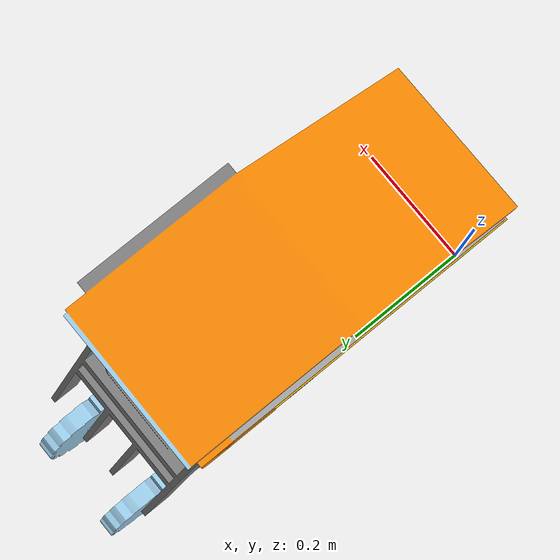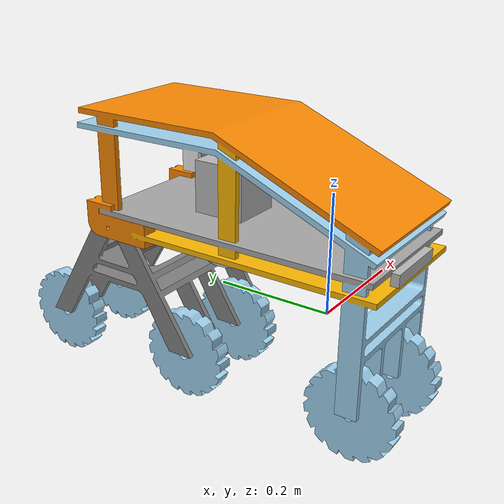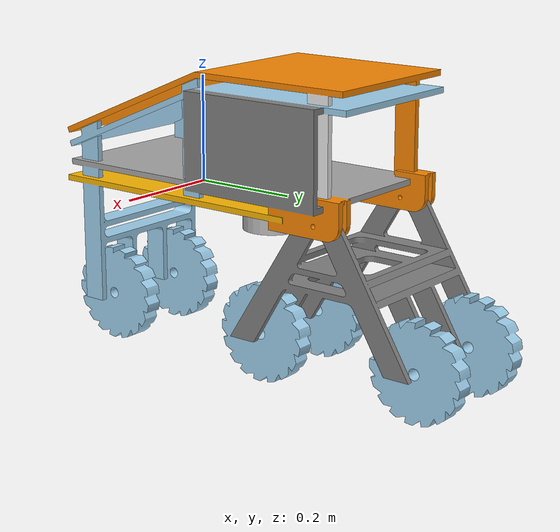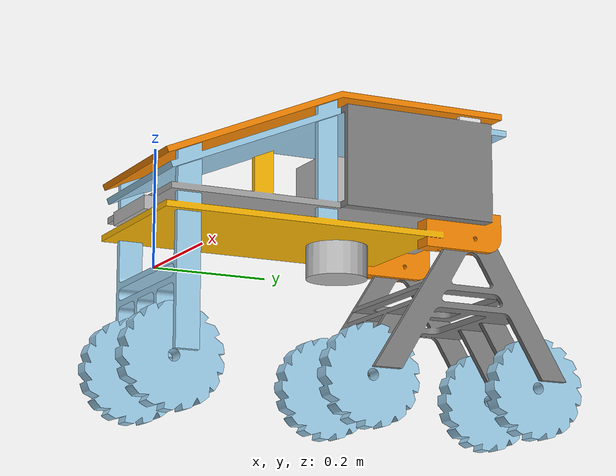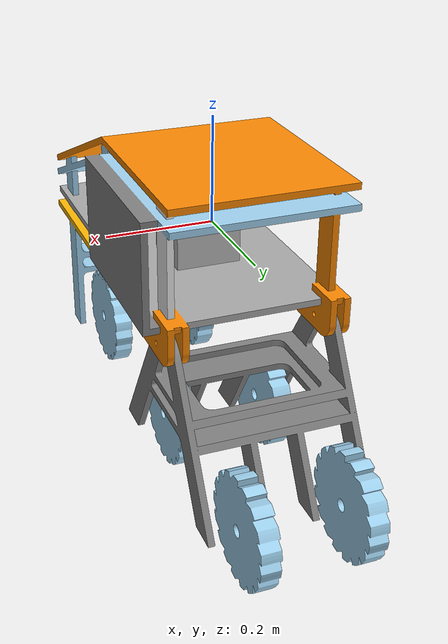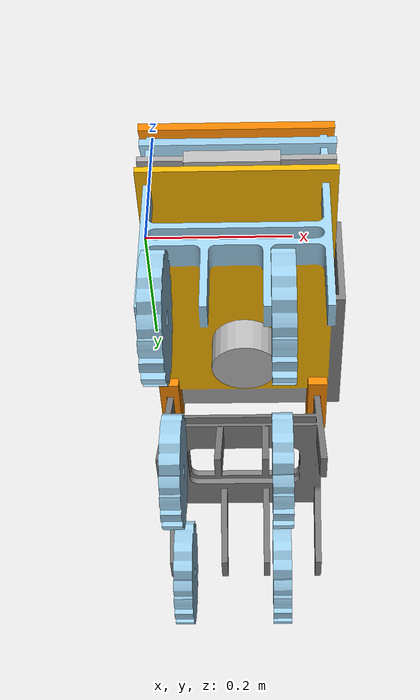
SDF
<?xml version="1.0"?>
<sdf version="1.8">
    <model name="R2">
        <self_collide>true</self_collide>
        <link name="base_link">
            <inertial>
                <pose>0.125  0.456 0.004 0 0 0</pose>
                <mass>10.157</mass> <inertia>
                    <ixx>0.399</ixx>   <ixy>-0.014</ixy>  <ixz>-0.003</ixz>
                    <iyy>0.168</iyy>
                    <iyz>-0.064</iyz>
                    <izz>0.392</izz>
                </inertia>
            </inertial>
            <collision name="collision">
                <pose>0 0 0 0 0 0</pose>
                <geometry>
                    <mesh><uri>package://robocon_description/models/R2/meshes/R2-NO-A.dae</uri></mesh>
                </geometry>
            </collision>
            <visual name="visual">
                <pose>0 0 0 0 0 0</pose>
                <geometry>
                    <mesh><uri>package://robocon_description/models/R2/meshes/R2-NO-A.dae</uri></mesh>
                </geometry>
            </visual>
        </link>

        <link name="A_link">
            <inertial>
                <pose>0.125  0.456 0.004 0 0 0</pose>
                <mass>1.502</mass> <inertia>
                    <ixx>0.016</ixx> <ixy>-1.248e-8</ixy> <ixz>1.398e-7</ixz>
                    <iyy>0.017</iyy> <iyz>-1.527e-4</iyz>
                    <izz>0.025</izz>
                </inertia>
            </inertial>
            <collision name="collision">
                 <!-- Center X shifted to ~0.12 to be between wheels. Width reduced to 5cm -->
                <pose>0.12 0.45 0 0 0 0</pose>
                <geometry>
                   <box>
                        <size>0.05 0.4 0.2</size>
                    </box>
                </geometry>
            </collision>
            <visual name="visual">
                <pose>0 0 0 0 0 0</pose>
                <geometry>
                    <mesh><uri>package://robocon_description/models/R2/meshes/R2-A.dae</uri></mesh>
                </geometry>
            </visual>
        </link>

        <joint name="A_joint" type="revolute">
            <parent>base_link</parent>
            <child>A_link</child>

            <pose>0.243 0.445 0.04 0 0 0</pose>

            <axis>
                <xyz>1 0 0</xyz>
                <limit>
                    <lower>-1.57</lower>
                    <upper>1.57</upper>
                </limit>
            </axis>
        </joint>

        <link name = "mid_left_wheel"> <pose relative_to="base_link">0.04 0.300 -0.184 0 0 0</pose>
            <inertial>
                <mass>1.0</mass>
                <inertia>
                    <ixx>0.005</ixx> <ixy>0</ixy> <ixz>0</ixz>
                    <iyy>0.005</iyy> <iyz>0</iyz>
                    <izz>0.005</izz>
                </inertia>
            </inertial>
            <visual name="visual">
            <pose>0 0 0 0 3.1415926535 0</pose>
                <geometry><mesh><uri>package://robocon_description/models/R2_wheel/meshes/wheel.dae</uri></mesh></geometry>
            </visual>
            <collision name="collision">
            <pose>0 0 0 0 3.1415926535 0</pose>
                <geometry><mesh><uri>package://robocon_description/models/R2_wheel/meshes/wheel.dae</uri></mesh></geometry>
                <surface>
                <friction>
                    <ode>
                    <mu>1.0</mu>  <mu2>1.0</mu2>
                    </ode>
                </friction>
                </surface>
            </collision>
        </link>

        <joint name="mid_left_wheel_joint" type="revolute">
            <parent>A_link</parent>
            <child>mid_left_wheel</child>
            <axis>
                <xyz>1 0 0</xyz> <limit>
                <lower>-1e16</lower>
                <upper>1e16</upper>
                </limit>
            </axis>
        </joint>

        <link name = "mid_right_wheel"> <pose relative_to="base_link">0.2 0.300 -0.184 0 0 0</pose>
            <inertial>
                <mass>1.0</mass>
                <inertia>
                    <ixx>0.005</ixx> <ixy>0</ixy> <ixz>0</ixz>
                    <iyy>0.005</iyy> <iyz>0</iyz>
                    <izz>0.005</izz>
                </inertia>
            </inertial>
            <visual name="visual">
            <pose>0 0 0 0 3.1415926535 0</pose>
                <geometry><mesh><uri>package://robocon_description/models/R2_wheel/meshes/wheel.dae</uri></mesh></geometry>
            </visual>
            <collision name="collision">
            <pose>0 0 0 0 3.1415926535 0</pose>
                <geometry><mesh><uri>package://robocon_description/models/R2_wheel/meshes/wheel.dae</uri></mesh></geometry>
                <surface>
                <friction>
                    <ode>
                    <mu>1.0</mu>  <mu2>1.0</mu2>
                    </ode>
                </friction>
                </surface>
            </collision>
        </link>

        <joint name="mid_right_wheel_joint" type="revolute">
            <parent>A_link</parent>
            <child>mid_right_wheel</child>
            <axis>
                <xyz>1 0 0</xyz> <limit>
                <lower>-1e16</lower>
                <upper>1e16</upper>
                </limit>
            </axis>
        </joint>

        <link name = "front_left_wheel"> <pose relative_to="base_link">0.04 0.610 -0.184 0 0 0</pose>
            <inertial>
                <mass>1.0</mass>
                <inertia>
                    <ixx>0.005</ixx> <ixy>0</ixy> <ixz>0</ixz>
                    <iyy>0.005</iyy> <iyz>0</iyz>
                    <izz>0.005</izz>
                </inertia>
            </inertial>
            <visual name="visual">
            <pose>0 0 0 0 3.1415926535 0</pose>
                <geometry><mesh><uri>package://robocon_description/models/R2_wheel/meshes/wheel.dae</uri></mesh></geometry>
            </visual>
            <collision name="collision">
            <pose>0 0 0 0 3.1415926535 0</pose>
                <geometry><mesh><uri>package://robocon_description/models/R2_wheel/meshes/wheel.dae</uri></mesh></geometry>
                <surface>
                <friction>
                    <ode>
                    <mu>1.0</mu>  <mu2>1.0</mu2>
                    </ode>
                </friction>
                </surface>
            </collision>
        </link>

        <joint name="front_left_wheel_joint" type="revolute">
            <parent>A_link</parent>
            <child>front_left_wheel</child>
            <axis>
                <xyz>1 0 0</xyz> <limit>
                <lower>-1e16</lower>
                <upper>1e16</upper>
                </limit>
            </axis>
        </joint>
        <link name = "front_right_wheel"> <pose relative_to="base_link">0.2 0.610 -0.184 0 0 0</pose>
            <inertial>
                <mass>1.0</mass>
                <inertia>
                    <ixx>0.005</ixx> <ixy>0</ixy> <ixz>0</ixz>
                    <iyy>0.005</iyy> <iyz>0</iyz>
                    <izz>0.005</izz>
                </inertia>
            </inertial>
            <visual name="visual">
            <pose>0 0 0 0 3.1415926535 0</pose>
                <geometry><mesh><uri>package://robocon_description/models/R2_wheel/meshes/wheel.dae</uri></mesh></geometry>
            </visual>
            <collision name="collision">
            <pose>0 0 0 0 3.1415926535 0</pose>
                <geometry><mesh><uri>package://robocon_description/models/R2_wheel/meshes/wheel.dae</uri></mesh></geometry>
                <surface>
                <friction>
                    <ode>
                    <mu>1.0</mu>  <mu2>1.0</mu2>
                    </ode>
                </friction>
                </surface>
            </collision>
        </link>

        <joint name="front_right_wheel_joint" type="revolute">
            <parent>A_link</parent>
            <child>front_right_wheel</child>
            <axis>
                <xyz>1 0 0</xyz> <limit>
                <lower>-1e16</lower>
                <upper>1e16</upper>
                </limit>
            </axis>
        </joint>

        <link name = "back_left_wheel"> <pose relative_to="base_link">0.04 -0.045 -0.180 0 0 0</pose>
            <inertial>
                <mass>1.0</mass>
                <inertia>
                    <ixx>0.005</ixx> <ixy>0</ixy> <ixz>0</ixz>
                    <iyy>0.005</iyy> <iyz>0</iyz>
                    <izz>0.005</izz>
                </inertia>
            </inertial>
            <visual name="visual">
            <pose>0 0 0 0 3.1415926535 0</pose>
                <geometry><mesh><uri>package://robocon_description/models/R2_wheel/meshes/wheel.dae</uri></mesh></geometry>
            </visual>
            <collision name="collision">
            <pose>0 0 0 0 3.1415926535 0</pose>
                <geometry><mesh><uri>package://robocon_description/models/R2_wheel/meshes/wheel.dae</uri></mesh></geometry>
                <surface>
                <friction>
                    <ode>
                    <mu>1.0</mu>  <mu2>1.0</mu2>
                    </ode>
                </friction>
                </surface>
            </collision>
        </link>

        <joint name="back_left_wheel_joint" type="revolute">
            <parent>base_link</parent>
            <child>back_left_wheel</child>
            <axis>
                <xyz>1 0 0</xyz> <limit>
                <lower>-1e16</lower>
                <upper>1e16</upper>
                </limit>
            </axis>
        </joint>

        <link name = "back_right_wheel"> <pose relative_to="base_link">0.2 -0.045 -0.180 0 0 0</pose>
            <inertial>
                <mass>1.0</mass>
                <inertia>
                    <ixx>0.005</ixx> <ixy>0</ixy> <ixz>0</ixz>
                    <iyy>0.005</iyy> <iyz>0</iyz>
                    <izz>0.005</izz>
                </inertia>
            </inertial>
            <visual name="visual">
            <pose>0 0 0 0 3.1415926535 0</pose>
                <geometry><mesh><uri>package://robocon_description/models/R2_wheel/meshes/wheel.dae</uri></mesh></geometry>
            </visual>
            <collision name="collision">
            <pose>0 0 0 0 3.1415926535 0</pose>
                <geometry><mesh><uri>package://robocon_description/models/R2_wheel/meshes/wheel.dae</uri></mesh></geometry>
                <surface>
                <friction>
                    <ode>
                    <mu>1.0</mu>  <mu2>1.0</mu2>
                    </ode>
                </friction>
                </surface>
            </collision>
        </link>

        <joint name="back_right_wheel_joint" type="revolute">
            <parent>base_link</parent>
            <child>back_right_wheel</child>
            <axis>
                <xyz>1 0 0</xyz> <limit>
                <lower>-1e16</lower>
                <upper>1e16</upper>
                </limit>
            </axis>
        </joint>

        <!-- IMU -->
       <joint name='imu_joint' type='fixed'>
            <parent>base_link</parent>
            <child>imu_link</child>
            <pose relative_to="base_link">0.13 0.27 0.125 0 0 0</pose>
        </joint>

        <link name='imu_link'>
            <pose relative_to="imu_joint"/>
            <visual name="imu_link_visual">
                <geometry><box><size>0.1 0.1 0.1</size></box></geometry>
            </visual>
            <collision name="imu_link_collision">
                <geometry><box><size>0.1 0.1 0.1</size></box></geometry>
            </collision>
            <inertial>
                <mass>0.1</mass>
                <inertia>
                    <ixx>0.000167</ixx> <ixy>0</ixy> <ixz>0</ixz>
                    <iyy>0.000167</iyy> <iyz>0</iyz>
                    <izz>0.000167</izz>
                </inertia>
            </inertial>
            <sensor name="imu_sensor" type="imu">
                <always_on>true</always_on>
                <update_rate>100</update_rate>
                <visualize>true</visualize>
                <topic>imu</topic>
                <gz_frame_id>/imu_link</gz_frame_id>
                <imu>
                    <angular_velocity>
                        <x><noise type="gaussian"><mean>0.0</mean><stddev>2e-4</stddev><bias_mean>0.0000075</bias_mean><bias_stddev>0.0000008</bias_stddev></noise></x>
                        <y><noise type="gaussian"><mean>0.0</mean><stddev>2e-4</stddev><bias_mean>0.0000075</bias_mean><bias_stddev>0.0000008</bias_stddev></noise></y>
                        <z><noise type="gaussian"><mean>0.0</mean><stddev>2e-4</stddev><bias_mean>0.0000075</bias_mean><bias_stddev>0.0000008</bias_stddev></noise></z>
                    </angular_velocity>
                    <linear_acceleration>
                        <x><noise type="gaussian"><mean>0.0</mean><stddev>1.7e-2</stddev><bias_mean>0.1</bias_mean><bias_stddev>0.001</bias_stddev></noise></x>
                        <y><noise type="gaussian"><mean>0.0</mean><stddev>1.7e-2</stddev><bias_mean>0.1</bias_mean><bias_stddev>0.001</bias_stddev></noise></y>
                        <z><noise type="gaussian"><mean>0.0</mean><stddev>1.7e-2</stddev><bias_mean>0.1</bias_mean><bias_stddev>0.001</bias_stddev></noise></z>
                    </linear_acceleration>
                </imu>
            </sensor>
        </link>
        <!-- Lidar -->
        <joint name="lidar_joint" type="fixed">
            <parent>base_link</parent>
            <child>lidar_link</child>
            <pose relative_to="base_link">0.13 0.27 0.009 0 0 0</pose>
        </joint>

        <link name='lidar_link'>
            <pose relative_to="lidar_joint"/>
            <visual name="lidar_link_visual">
                <geometry>
                    <cylinder><radius>0.0508</radius><length>0.055</length></cylinder>
                </geometry>
            </visual>
            <collision name="lidar_link_collision">
                <geometry>
                    <cylinder><radius>0.0508</radius><length>0.055</length></cylinder>
                </geometry>
            </collision>
            <inertial>
                <mass>0.125</mass>
                <inertia>
                    <ixx>0.000112</ixx> <ixy>0</ixy> <ixz>0</ixz>
                    <iyy>0.000112</iyy> <iyz>0</iyz>
                    <izz>0.000161</izz>
                </inertia>
            </inertial>
            <sensor name="lidar" type="gpu_lidar">
                <always_on>true</always_on>
                <visualize>true</visualize>
                <update_rate>5</update_rate>
                <topic>scan</topic>
                <gz_frame_id>/lidar_link</gz_frame_id>
                <lidar>
                    <scan>
                        <horizontal>
                            <samples>360</samples><resolution>1.000000</resolution>
                            <min_angle>0.000000</min_angle><max_angle>6.280000</max_angle>
                        </horizontal>
                    </scan>
                    <range>
                        <min>0.120000</min><max>3.5</max><resolution>0.015000</resolution>
                    </range>
                    <noise>
                        <type>gaussian</type><mean>0.0</mean><stddev>0.01</stddev>
                    </noise>
                </lidar>
            </sensor>
        </link>

        <!-- Camera -->
        <joint name="camera_joint" type="fixed">
            <parent>base_link</parent>
            <child>camera_link</child>
            <pose relative_to="base_link">0.0 -0.085 -0.12 0 0 0</pose>
        </joint>

        <link name='camera_link'>
            <pose relative_to="camera_joint"/>
            <visual name="camera_link_visual">
                <pose>0.12 0 0.18 0 0 1.570796327</pose>
                <geometry>
                    <box><size>0.015 0.130 0.0222</size></box>
                </geometry>
            </visual>
            <collision name="camera_link_collision">
                <geometry>
                    <box><size>0.015 0.130 0.0222</size></box>
                </geometry>
            </collision>
            <inertial>
                <mass>0.035</mass>
                <inertia>
                    <ixx>0.000050</ixx> <ixy>0</ixy> <ixz>0</ixz>
                    <iyy>0.000002</iyy> <iyz>0</iyz>
                    <izz>0.000050</izz>
                </inertia>
            </inertial>
            <sensor name="depth_camera" type="rgbd_camera">
                <always_on>true</always_on>
                <visualize>true</visualize>
                <update_rate>5.0</update_rate>
                <topic>depth_camera</topic>
                <gz_frame_id>/camera_link</gz_frame_id>
                <camera>
                    <horizontal_fov>1.047198</horizontal_fov>
                    <image><width>640</width><height>480</height></image>
                    <clip><near>0.05</near><far>3</far></clip>
                </camera>
            </sensor>
        </link>

        <!-- Plugins -->
        <plugin
            filename="gz-sim-joint-state-publisher-system"
            name="gz::sim::systems::JointStatePublisher">
            <topic>joint_states</topic>
        </plugin>
        <plugin
            filename="gz-sim-odometry-publisher-system"
            name="gz::sim::systems::OdometryPublisher">
            <odom_frame>/odom</odom_frame>             <robot_base_frame>/base_link</robot_base_frame> <odom_topic>/odometry</odom_topic>
            <dimensions>3</dimensions>
        </plugin>

        <plugin filename="gz-sim-joint-controller-system" name="gz::sim::systems::JointController">
            <joint_name>front_left_wheel_joint</joint_name>
            <sub_topic>joint/front_left_wheel_joint/cmd_vel</sub_topic>
            <p_gain>1.0</p_gain>
        </plugin>
        <plugin filename="gz-sim-joint-controller-system" name="gz::sim::systems::JointController">
            <joint_name>front_right_wheel_joint</joint_name>
            <sub_topic>joint/front_right_wheel_joint/cmd_vel</sub_topic>
            <p_gain>1.0</p_gain>
        </plugin>
        <plugin filename="gz-sim-joint-controller-system" name="gz::sim::systems::JointController">
            <joint_name>mid_left_wheel_joint</joint_name>
            <sub_topic>joint/mid_left_wheel_joint/cmd_vel</sub_topic>
            <p_gain>1.0</p_gain>
        </plugin>
        <plugin filename="gz-sim-joint-controller-system" name="gz::sim::systems::JointController">
            <joint_name>mid_right_wheel_joint</joint_name>
            <sub_topic>joint/mid_right_wheel_joint/cmd_vel</sub_topic>
            <p_gain>1.0</p_gain>
        </plugin>
        <plugin filename="gz-sim-joint-controller-system" name="gz::sim::systems::JointController">
            <joint_name>back_left_wheel_joint</joint_name>
            <sub_topic>joint/back_left_wheel_joint/cmd_vel</sub_topic>
            <p_gain>1.0</p_gain>
        </plugin>
        <plugin filename="gz-sim-joint-controller-system" name="gz::sim::systems::JointController">
            <joint_name>back_right_wheel_joint</joint_name>
            <sub_topic>joint/back_right_wheel_joint/cmd_vel</sub_topic>
            <p_gain>1.0</p_gain>
        </plugin>

    </model>
</sdf>
